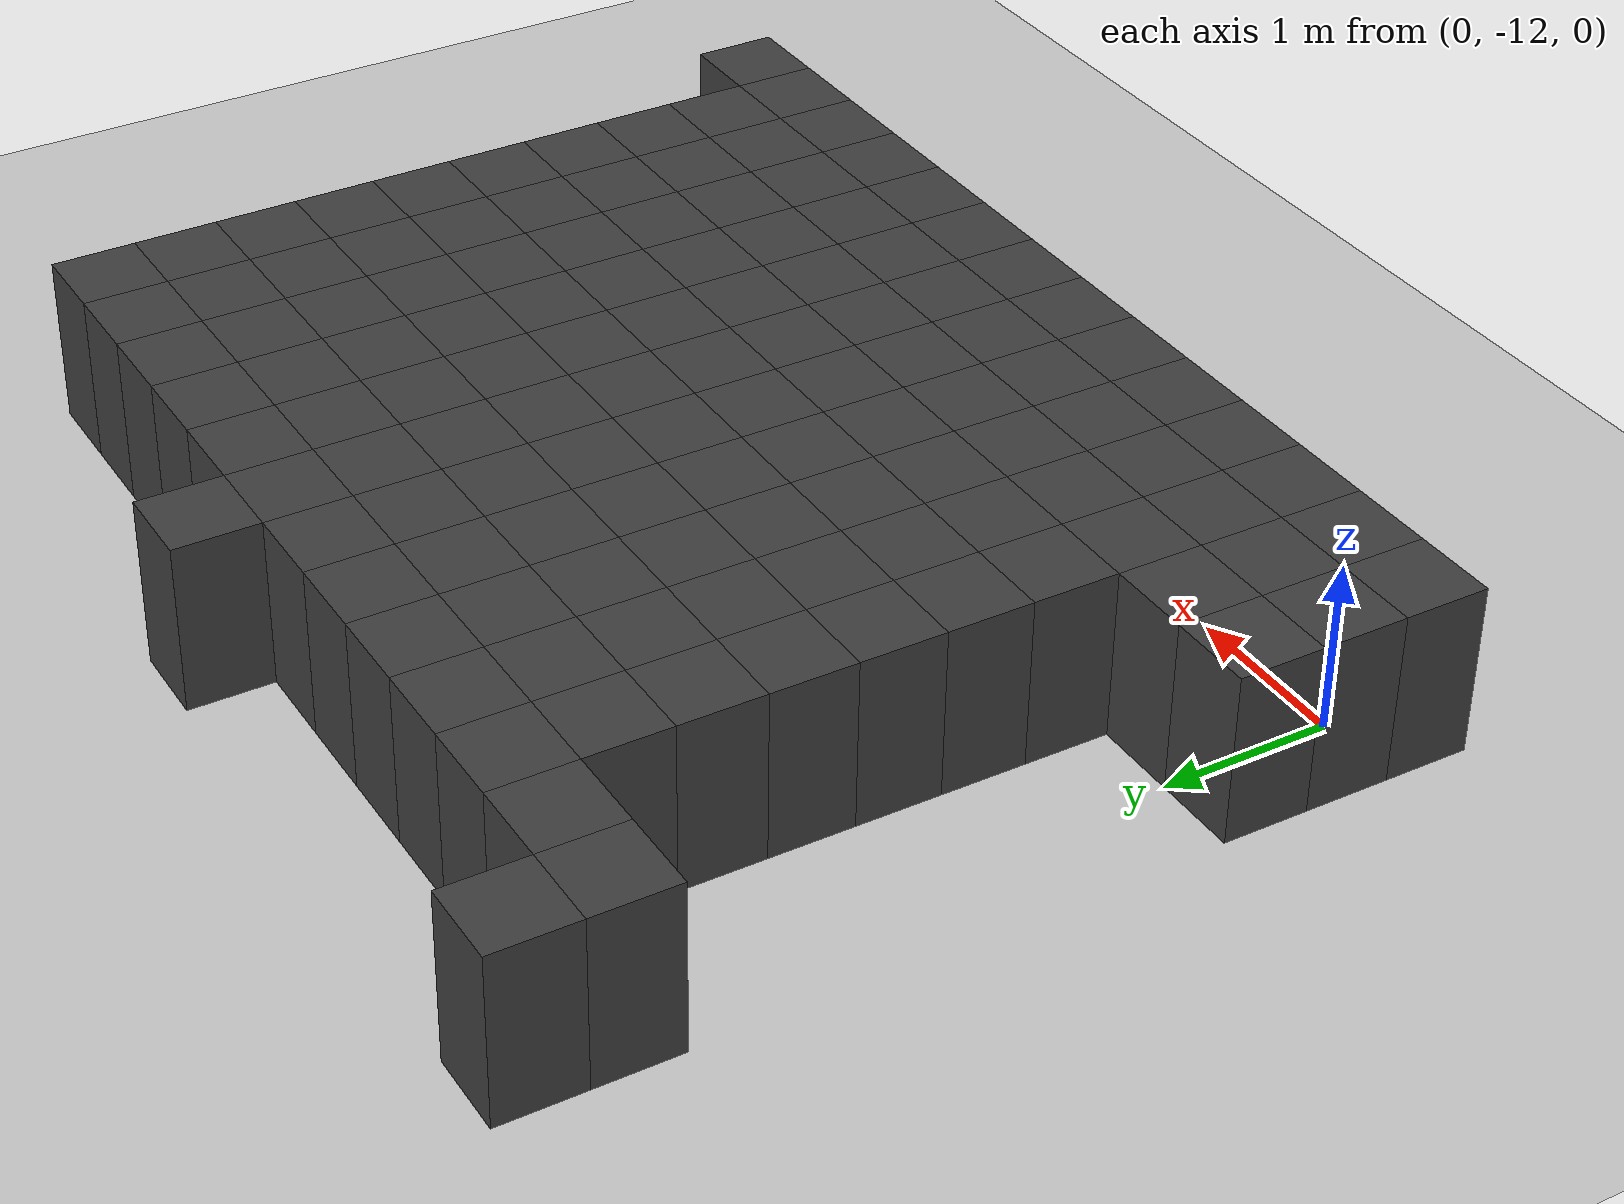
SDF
<sdf version="1.7">
 <world name="map_14888">
  <model name="ground_plane">
   <static>true</static>
   <link name="link">
    <collision name="collision">
     <geometry><plane><normal>0 0 1</normal><size>200 200</size></plane></geometry>
    </collision>
    <visual name="visual">
     <geometry><plane><normal>0 0 1</normal><size>200 200</size></plane></geometry>
     <material><ambient>0.8 0.8 0.8 1</ambient><diffuse>0.8 0.8 0.8 1</diffuse></material>
    </visual>
   </link>
  </model>
  <model name="maze_environment">
   <static>true</static>
   <link name="wall_1417">
    <pose>-0.250 -7.250 0.500 0 0 0</pose>
    <collision name="col"><geometry><box><size>0.5 0.5 1.0</size></box></geometry></collision>
    <visual name="vis">
     <geometry><box><size>0.5 0.5 1.0</size></box></geometry>
     <material><ambient>0.15 0.15 0.15 1</ambient><diffuse>0.25 0.25 0.25 1</diffuse></material>
    </visual>
   </link>
   <link name="wall_1418">
    <pose>3.250 -7.250 0.500 0 0 0</pose>
    <collision name="col"><geometry><box><size>0.5 0.5 1.0</size></box></geometry></collision>
    <visual name="vis">
     <geometry><box><size>0.5 0.5 1.0</size></box></geometry>
     <material><ambient>0.15 0.15 0.15 1</ambient><diffuse>0.25 0.25 0.25 1</diffuse></material>
    </visual>
   </link>
   <link name="wall_1447">
    <pose>-0.250 -7.750 0.500 0 0 0</pose>
    <collision name="col"><geometry><box><size>0.5 0.5 1.0</size></box></geometry></collision>
    <visual name="vis">
     <geometry><box><size>0.5 0.5 1.0</size></box></geometry>
     <material><ambient>0.15 0.15 0.15 1</ambient><diffuse>0.25 0.25 0.25 1</diffuse></material>
    </visual>
   </link>
   <link name="wall_1448">
    <pose>0.250 -7.750 0.500 0 0 0</pose>
    <collision name="col"><geometry><box><size>0.5 0.5 1.0</size></box></geometry></collision>
    <visual name="vis">
     <geometry><box><size>0.5 0.5 1.0</size></box></geometry>
     <material><ambient>0.15 0.15 0.15 1</ambient><diffuse>0.25 0.25 0.25 1</diffuse></material>
    </visual>
   </link>
   <link name="wall_1449">
    <pose>0.750 -7.750 0.500 0 0 0</pose>
    <collision name="col"><geometry><box><size>0.5 0.5 1.0</size></box></geometry></collision>
    <visual name="vis">
     <geometry><box><size>0.5 0.5 1.0</size></box></geometry>
     <material><ambient>0.15 0.15 0.15 1</ambient><diffuse>0.25 0.25 0.25 1</diffuse></material>
    </visual>
   </link>
   <link name="wall_1450">
    <pose>1.250 -7.750 0.500 0 0 0</pose>
    <collision name="col"><geometry><box><size>0.5 0.5 1.0</size></box></geometry></collision>
    <visual name="vis">
     <geometry><box><size>0.5 0.5 1.0</size></box></geometry>
     <material><ambient>0.15 0.15 0.15 1</ambient><diffuse>0.25 0.25 0.25 1</diffuse></material>
    </visual>
   </link>
   <link name="wall_1451">
    <pose>1.750 -7.750 0.500 0 0 0</pose>
    <collision name="col"><geometry><box><size>0.5 0.5 1.0</size></box></geometry></collision>
    <visual name="vis">
     <geometry><box><size>0.5 0.5 1.0</size></box></geometry>
     <material><ambient>0.15 0.15 0.15 1</ambient><diffuse>0.25 0.25 0.25 1</diffuse></material>
    </visual>
   </link>
   <link name="wall_1452">
    <pose>2.250 -7.750 0.500 0 0 0</pose>
    <collision name="col"><geometry><box><size>0.5 0.5 1.0</size></box></geometry></collision>
    <visual name="vis">
     <geometry><box><size>0.5 0.5 1.0</size></box></geometry>
     <material><ambient>0.15 0.15 0.15 1</ambient><diffuse>0.25 0.25 0.25 1</diffuse></material>
    </visual>
   </link>
   <link name="wall_1453">
    <pose>2.750 -7.750 0.500 0 0 0</pose>
    <collision name="col"><geometry><box><size>0.5 0.5 1.0</size></box></geometry></collision>
    <visual name="vis">
     <geometry><box><size>0.5 0.5 1.0</size></box></geometry>
     <material><ambient>0.15 0.15 0.15 1</ambient><diffuse>0.25 0.25 0.25 1</diffuse></material>
    </visual>
   </link>
   <link name="wall_1454">
    <pose>3.250 -7.750 0.500 0 0 0</pose>
    <collision name="col"><geometry><box><size>0.5 0.5 1.0</size></box></geometry></collision>
    <visual name="vis">
     <geometry><box><size>0.5 0.5 1.0</size></box></geometry>
     <material><ambient>0.15 0.15 0.15 1</ambient><diffuse>0.25 0.25 0.25 1</diffuse></material>
    </visual>
   </link>
   <link name="wall_1455">
    <pose>3.750 -7.750 0.500 0 0 0</pose>
    <collision name="col"><geometry><box><size>0.5 0.5 1.0</size></box></geometry></collision>
    <visual name="vis">
     <geometry><box><size>0.5 0.5 1.0</size></box></geometry>
     <material><ambient>0.15 0.15 0.15 1</ambient><diffuse>0.25 0.25 0.25 1</diffuse></material>
    </visual>
   </link>
   <link name="wall_1456">
    <pose>4.250 -7.750 0.500 0 0 0</pose>
    <collision name="col"><geometry><box><size>0.5 0.5 1.0</size></box></geometry></collision>
    <visual name="vis">
     <geometry><box><size>0.5 0.5 1.0</size></box></geometry>
     <material><ambient>0.15 0.15 0.15 1</ambient><diffuse>0.25 0.25 0.25 1</diffuse></material>
    </visual>
   </link>
   <link name="wall_1457">
    <pose>4.750 -7.750 0.500 0 0 0</pose>
    <collision name="col"><geometry><box><size>0.5 0.5 1.0</size></box></geometry></collision>
    <visual name="vis">
     <geometry><box><size>0.5 0.5 1.0</size></box></geometry>
     <material><ambient>0.15 0.15 0.15 1</ambient><diffuse>0.25 0.25 0.25 1</diffuse></material>
    </visual>
   </link>
   <link name="wall_1458">
    <pose>5.250 -7.750 0.500 0 0 0</pose>
    <collision name="col"><geometry><box><size>0.5 0.5 1.0</size></box></geometry></collision>
    <visual name="vis">
     <geometry><box><size>0.5 0.5 1.0</size></box></geometry>
     <material><ambient>0.15 0.15 0.15 1</ambient><diffuse>0.25 0.25 0.25 1</diffuse></material>
    </visual>
   </link>
   <link name="wall_1459">
    <pose>5.750 -7.750 0.500 0 0 0</pose>
    <collision name="col"><geometry><box><size>0.5 0.5 1.0</size></box></geometry></collision>
    <visual name="vis">
     <geometry><box><size>0.5 0.5 1.0</size></box></geometry>
     <material><ambient>0.15 0.15 0.15 1</ambient><diffuse>0.25 0.25 0.25 1</diffuse></material>
    </visual>
   </link>
   <link name="wall_1482">
    <pose>0.750 -8.250 0.500 0 0 0</pose>
    <collision name="col"><geometry><box><size>0.5 0.5 1.0</size></box></geometry></collision>
    <visual name="vis">
     <geometry><box><size>0.5 0.5 1.0</size></box></geometry>
     <material><ambient>0.15 0.15 0.15 1</ambient><diffuse>0.25 0.25 0.25 1</diffuse></material>
    </visual>
   </link>
   <link name="wall_1483">
    <pose>1.250 -8.250 0.500 0 0 0</pose>
    <collision name="col"><geometry><box><size>0.5 0.5 1.0</size></box></geometry></collision>
    <visual name="vis">
     <geometry><box><size>0.5 0.5 1.0</size></box></geometry>
     <material><ambient>0.15 0.15 0.15 1</ambient><diffuse>0.25 0.25 0.25 1</diffuse></material>
    </visual>
   </link>
   <link name="wall_1484">
    <pose>1.750 -8.250 0.500 0 0 0</pose>
    <collision name="col"><geometry><box><size>0.5 0.5 1.0</size></box></geometry></collision>
    <visual name="vis">
     <geometry><box><size>0.5 0.5 1.0</size></box></geometry>
     <material><ambient>0.15 0.15 0.15 1</ambient><diffuse>0.25 0.25 0.25 1</diffuse></material>
    </visual>
   </link>
   <link name="wall_1485">
    <pose>2.250 -8.250 0.500 0 0 0</pose>
    <collision name="col"><geometry><box><size>0.5 0.5 1.0</size></box></geometry></collision>
    <visual name="vis">
     <geometry><box><size>0.5 0.5 1.0</size></box></geometry>
     <material><ambient>0.15 0.15 0.15 1</ambient><diffuse>0.25 0.25 0.25 1</diffuse></material>
    </visual>
   </link>
   <link name="wall_1486">
    <pose>2.750 -8.250 0.500 0 0 0</pose>
    <collision name="col"><geometry><box><size>0.5 0.5 1.0</size></box></geometry></collision>
    <visual name="vis">
     <geometry><box><size>0.5 0.5 1.0</size></box></geometry>
     <material><ambient>0.15 0.15 0.15 1</ambient><diffuse>0.25 0.25 0.25 1</diffuse></material>
    </visual>
   </link>
   <link name="wall_1487">
    <pose>3.250 -8.250 0.500 0 0 0</pose>
    <collision name="col"><geometry><box><size>0.5 0.5 1.0</size></box></geometry></collision>
    <visual name="vis">
     <geometry><box><size>0.5 0.5 1.0</size></box></geometry>
     <material><ambient>0.15 0.15 0.15 1</ambient><diffuse>0.25 0.25 0.25 1</diffuse></material>
    </visual>
   </link>
   <link name="wall_1488">
    <pose>3.750 -8.250 0.500 0 0 0</pose>
    <collision name="col"><geometry><box><size>0.5 0.5 1.0</size></box></geometry></collision>
    <visual name="vis">
     <geometry><box><size>0.5 0.5 1.0</size></box></geometry>
     <material><ambient>0.15 0.15 0.15 1</ambient><diffuse>0.25 0.25 0.25 1</diffuse></material>
    </visual>
   </link>
   <link name="wall_1489">
    <pose>4.250 -8.250 0.500 0 0 0</pose>
    <collision name="col"><geometry><box><size>0.5 0.5 1.0</size></box></geometry></collision>
    <visual name="vis">
     <geometry><box><size>0.5 0.5 1.0</size></box></geometry>
     <material><ambient>0.15 0.15 0.15 1</ambient><diffuse>0.25 0.25 0.25 1</diffuse></material>
    </visual>
   </link>
   <link name="wall_1490">
    <pose>4.750 -8.250 0.500 0 0 0</pose>
    <collision name="col"><geometry><box><size>0.5 0.5 1.0</size></box></geometry></collision>
    <visual name="vis">
     <geometry><box><size>0.5 0.5 1.0</size></box></geometry>
     <material><ambient>0.15 0.15 0.15 1</ambient><diffuse>0.25 0.25 0.25 1</diffuse></material>
    </visual>
   </link>
   <link name="wall_1491">
    <pose>5.250 -8.250 0.500 0 0 0</pose>
    <collision name="col"><geometry><box><size>0.5 0.5 1.0</size></box></geometry></collision>
    <visual name="vis">
     <geometry><box><size>0.5 0.5 1.0</size></box></geometry>
     <material><ambient>0.15 0.15 0.15 1</ambient><diffuse>0.25 0.25 0.25 1</diffuse></material>
    </visual>
   </link>
   <link name="wall_1492">
    <pose>5.750 -8.250 0.500 0 0 0</pose>
    <collision name="col"><geometry><box><size>0.5 0.5 1.0</size></box></geometry></collision>
    <visual name="vis">
     <geometry><box><size>0.5 0.5 1.0</size></box></geometry>
     <material><ambient>0.15 0.15 0.15 1</ambient><diffuse>0.25 0.25 0.25 1</diffuse></material>
    </visual>
   </link>
   <link name="wall_1515">
    <pose>0.750 -8.750 0.500 0 0 0</pose>
    <collision name="col"><geometry><box><size>0.5 0.5 1.0</size></box></geometry></collision>
    <visual name="vis">
     <geometry><box><size>0.5 0.5 1.0</size></box></geometry>
     <material><ambient>0.15 0.15 0.15 1</ambient><diffuse>0.25 0.25 0.25 1</diffuse></material>
    </visual>
   </link>
   <link name="wall_1516">
    <pose>1.250 -8.750 0.500 0 0 0</pose>
    <collision name="col"><geometry><box><size>0.5 0.5 1.0</size></box></geometry></collision>
    <visual name="vis">
     <geometry><box><size>0.5 0.5 1.0</size></box></geometry>
     <material><ambient>0.15 0.15 0.15 1</ambient><diffuse>0.25 0.25 0.25 1</diffuse></material>
    </visual>
   </link>
   <link name="wall_1517">
    <pose>1.750 -8.750 0.500 0 0 0</pose>
    <collision name="col"><geometry><box><size>0.5 0.5 1.0</size></box></geometry></collision>
    <visual name="vis">
     <geometry><box><size>0.5 0.5 1.0</size></box></geometry>
     <material><ambient>0.15 0.15 0.15 1</ambient><diffuse>0.25 0.25 0.25 1</diffuse></material>
    </visual>
   </link>
   <link name="wall_1518">
    <pose>2.250 -8.750 0.500 0 0 0</pose>
    <collision name="col"><geometry><box><size>0.5 0.5 1.0</size></box></geometry></collision>
    <visual name="vis">
     <geometry><box><size>0.5 0.5 1.0</size></box></geometry>
     <material><ambient>0.15 0.15 0.15 1</ambient><diffuse>0.25 0.25 0.25 1</diffuse></material>
    </visual>
   </link>
   <link name="wall_1519">
    <pose>2.750 -8.750 0.500 0 0 0</pose>
    <collision name="col"><geometry><box><size>0.5 0.5 1.0</size></box></geometry></collision>
    <visual name="vis">
     <geometry><box><size>0.5 0.5 1.0</size></box></geometry>
     <material><ambient>0.15 0.15 0.15 1</ambient><diffuse>0.25 0.25 0.25 1</diffuse></material>
    </visual>
   </link>
   <link name="wall_1520">
    <pose>3.250 -8.750 0.500 0 0 0</pose>
    <collision name="col"><geometry><box><size>0.5 0.5 1.0</size></box></geometry></collision>
    <visual name="vis">
     <geometry><box><size>0.5 0.5 1.0</size></box></geometry>
     <material><ambient>0.15 0.15 0.15 1</ambient><diffuse>0.25 0.25 0.25 1</diffuse></material>
    </visual>
   </link>
   <link name="wall_1521">
    <pose>3.750 -8.750 0.500 0 0 0</pose>
    <collision name="col"><geometry><box><size>0.5 0.5 1.0</size></box></geometry></collision>
    <visual name="vis">
     <geometry><box><size>0.5 0.5 1.0</size></box></geometry>
     <material><ambient>0.15 0.15 0.15 1</ambient><diffuse>0.25 0.25 0.25 1</diffuse></material>
    </visual>
   </link>
   <link name="wall_1522">
    <pose>4.250 -8.750 0.500 0 0 0</pose>
    <collision name="col"><geometry><box><size>0.5 0.5 1.0</size></box></geometry></collision>
    <visual name="vis">
     <geometry><box><size>0.5 0.5 1.0</size></box></geometry>
     <material><ambient>0.15 0.15 0.15 1</ambient><diffuse>0.25 0.25 0.25 1</diffuse></material>
    </visual>
   </link>
   <link name="wall_1523">
    <pose>4.750 -8.750 0.500 0 0 0</pose>
    <collision name="col"><geometry><box><size>0.5 0.5 1.0</size></box></geometry></collision>
    <visual name="vis">
     <geometry><box><size>0.5 0.5 1.0</size></box></geometry>
     <material><ambient>0.15 0.15 0.15 1</ambient><diffuse>0.25 0.25 0.25 1</diffuse></material>
    </visual>
   </link>
   <link name="wall_1524">
    <pose>5.250 -8.750 0.500 0 0 0</pose>
    <collision name="col"><geometry><box><size>0.5 0.5 1.0</size></box></geometry></collision>
    <visual name="vis">
     <geometry><box><size>0.5 0.5 1.0</size></box></geometry>
     <material><ambient>0.15 0.15 0.15 1</ambient><diffuse>0.25 0.25 0.25 1</diffuse></material>
    </visual>
   </link>
   <link name="wall_1525">
    <pose>5.750 -8.750 0.500 0 0 0</pose>
    <collision name="col"><geometry><box><size>0.5 0.5 1.0</size></box></geometry></collision>
    <visual name="vis">
     <geometry><box><size>0.5 0.5 1.0</size></box></geometry>
     <material><ambient>0.15 0.15 0.15 1</ambient><diffuse>0.25 0.25 0.25 1</diffuse></material>
    </visual>
   </link>
   <link name="wall_1547">
    <pose>0.750 -9.250 0.500 0 0 0</pose>
    <collision name="col"><geometry><box><size>0.5 0.5 1.0</size></box></geometry></collision>
    <visual name="vis">
     <geometry><box><size>0.5 0.5 1.0</size></box></geometry>
     <material><ambient>0.15 0.15 0.15 1</ambient><diffuse>0.25 0.25 0.25 1</diffuse></material>
    </visual>
   </link>
   <link name="wall_1548">
    <pose>1.250 -9.250 0.500 0 0 0</pose>
    <collision name="col"><geometry><box><size>0.5 0.5 1.0</size></box></geometry></collision>
    <visual name="vis">
     <geometry><box><size>0.5 0.5 1.0</size></box></geometry>
     <material><ambient>0.15 0.15 0.15 1</ambient><diffuse>0.25 0.25 0.25 1</diffuse></material>
    </visual>
   </link>
   <link name="wall_1549">
    <pose>1.750 -9.250 0.500 0 0 0</pose>
    <collision name="col"><geometry><box><size>0.5 0.5 1.0</size></box></geometry></collision>
    <visual name="vis">
     <geometry><box><size>0.5 0.5 1.0</size></box></geometry>
     <material><ambient>0.15 0.15 0.15 1</ambient><diffuse>0.25 0.25 0.25 1</diffuse></material>
    </visual>
   </link>
   <link name="wall_1550">
    <pose>2.250 -9.250 0.500 0 0 0</pose>
    <collision name="col"><geometry><box><size>0.5 0.5 1.0</size></box></geometry></collision>
    <visual name="vis">
     <geometry><box><size>0.5 0.5 1.0</size></box></geometry>
     <material><ambient>0.15 0.15 0.15 1</ambient><diffuse>0.25 0.25 0.25 1</diffuse></material>
    </visual>
   </link>
   <link name="wall_1551">
    <pose>2.750 -9.250 0.500 0 0 0</pose>
    <collision name="col"><geometry><box><size>0.5 0.5 1.0</size></box></geometry></collision>
    <visual name="vis">
     <geometry><box><size>0.5 0.5 1.0</size></box></geometry>
     <material><ambient>0.15 0.15 0.15 1</ambient><diffuse>0.25 0.25 0.25 1</diffuse></material>
    </visual>
   </link>
   <link name="wall_1552">
    <pose>3.250 -9.250 0.500 0 0 0</pose>
    <collision name="col"><geometry><box><size>0.5 0.5 1.0</size></box></geometry></collision>
    <visual name="vis">
     <geometry><box><size>0.5 0.5 1.0</size></box></geometry>
     <material><ambient>0.15 0.15 0.15 1</ambient><diffuse>0.25 0.25 0.25 1</diffuse></material>
    </visual>
   </link>
   <link name="wall_1553">
    <pose>3.750 -9.250 0.500 0 0 0</pose>
    <collision name="col"><geometry><box><size>0.5 0.5 1.0</size></box></geometry></collision>
    <visual name="vis">
     <geometry><box><size>0.5 0.5 1.0</size></box></geometry>
     <material><ambient>0.15 0.15 0.15 1</ambient><diffuse>0.25 0.25 0.25 1</diffuse></material>
    </visual>
   </link>
   <link name="wall_1554">
    <pose>4.250 -9.250 0.500 0 0 0</pose>
    <collision name="col"><geometry><box><size>0.5 0.5 1.0</size></box></geometry></collision>
    <visual name="vis">
     <geometry><box><size>0.5 0.5 1.0</size></box></geometry>
     <material><ambient>0.15 0.15 0.15 1</ambient><diffuse>0.25 0.25 0.25 1</diffuse></material>
    </visual>
   </link>
   <link name="wall_1555">
    <pose>4.750 -9.250 0.500 0 0 0</pose>
    <collision name="col"><geometry><box><size>0.5 0.5 1.0</size></box></geometry></collision>
    <visual name="vis">
     <geometry><box><size>0.5 0.5 1.0</size></box></geometry>
     <material><ambient>0.15 0.15 0.15 1</ambient><diffuse>0.25 0.25 0.25 1</diffuse></material>
    </visual>
   </link>
   <link name="wall_1556">
    <pose>5.250 -9.250 0.500 0 0 0</pose>
    <collision name="col"><geometry><box><size>0.5 0.5 1.0</size></box></geometry></collision>
    <visual name="vis">
     <geometry><box><size>0.5 0.5 1.0</size></box></geometry>
     <material><ambient>0.15 0.15 0.15 1</ambient><diffuse>0.25 0.25 0.25 1</diffuse></material>
    </visual>
   </link>
   <link name="wall_1557">
    <pose>5.750 -9.250 0.500 0 0 0</pose>
    <collision name="col"><geometry><box><size>0.5 0.5 1.0</size></box></geometry></collision>
    <visual name="vis">
     <geometry><box><size>0.5 0.5 1.0</size></box></geometry>
     <material><ambient>0.15 0.15 0.15 1</ambient><diffuse>0.25 0.25 0.25 1</diffuse></material>
    </visual>
   </link>
   <link name="wall_1587">
    <pose>0.750 -9.750 0.500 0 0 0</pose>
    <collision name="col"><geometry><box><size>0.5 0.5 1.0</size></box></geometry></collision>
    <visual name="vis">
     <geometry><box><size>0.5 0.5 1.0</size></box></geometry>
     <material><ambient>0.15 0.15 0.15 1</ambient><diffuse>0.25 0.25 0.25 1</diffuse></material>
    </visual>
   </link>
   <link name="wall_1588">
    <pose>1.250 -9.750 0.500 0 0 0</pose>
    <collision name="col"><geometry><box><size>0.5 0.5 1.0</size></box></geometry></collision>
    <visual name="vis">
     <geometry><box><size>0.5 0.5 1.0</size></box></geometry>
     <material><ambient>0.15 0.15 0.15 1</ambient><diffuse>0.25 0.25 0.25 1</diffuse></material>
    </visual>
   </link>
   <link name="wall_1589">
    <pose>1.750 -9.750 0.500 0 0 0</pose>
    <collision name="col"><geometry><box><size>0.5 0.5 1.0</size></box></geometry></collision>
    <visual name="vis">
     <geometry><box><size>0.5 0.5 1.0</size></box></geometry>
     <material><ambient>0.15 0.15 0.15 1</ambient><diffuse>0.25 0.25 0.25 1</diffuse></material>
    </visual>
   </link>
   <link name="wall_1590">
    <pose>2.250 -9.750 0.500 0 0 0</pose>
    <collision name="col"><geometry><box><size>0.5 0.5 1.0</size></box></geometry></collision>
    <visual name="vis">
     <geometry><box><size>0.5 0.5 1.0</size></box></geometry>
     <material><ambient>0.15 0.15 0.15 1</ambient><diffuse>0.25 0.25 0.25 1</diffuse></material>
    </visual>
   </link>
   <link name="wall_1591">
    <pose>2.750 -9.750 0.500 0 0 0</pose>
    <collision name="col"><geometry><box><size>0.5 0.5 1.0</size></box></geometry></collision>
    <visual name="vis">
     <geometry><box><size>0.5 0.5 1.0</size></box></geometry>
     <material><ambient>0.15 0.15 0.15 1</ambient><diffuse>0.25 0.25 0.25 1</diffuse></material>
    </visual>
   </link>
   <link name="wall_1592">
    <pose>3.250 -9.750 0.500 0 0 0</pose>
    <collision name="col"><geometry><box><size>0.5 0.5 1.0</size></box></geometry></collision>
    <visual name="vis">
     <geometry><box><size>0.5 0.5 1.0</size></box></geometry>
     <material><ambient>0.15 0.15 0.15 1</ambient><diffuse>0.25 0.25 0.25 1</diffuse></material>
    </visual>
   </link>
   <link name="wall_1593">
    <pose>3.750 -9.750 0.500 0 0 0</pose>
    <collision name="col"><geometry><box><size>0.5 0.5 1.0</size></box></geometry></collision>
    <visual name="vis">
     <geometry><box><size>0.5 0.5 1.0</size></box></geometry>
     <material><ambient>0.15 0.15 0.15 1</ambient><diffuse>0.25 0.25 0.25 1</diffuse></material>
    </visual>
   </link>
   <link name="wall_1594">
    <pose>4.250 -9.750 0.500 0 0 0</pose>
    <collision name="col"><geometry><box><size>0.5 0.5 1.0</size></box></geometry></collision>
    <visual name="vis">
     <geometry><box><size>0.5 0.5 1.0</size></box></geometry>
     <material><ambient>0.15 0.15 0.15 1</ambient><diffuse>0.25 0.25 0.25 1</diffuse></material>
    </visual>
   </link>
   <link name="wall_1595">
    <pose>4.750 -9.750 0.500 0 0 0</pose>
    <collision name="col"><geometry><box><size>0.5 0.5 1.0</size></box></geometry></collision>
    <visual name="vis">
     <geometry><box><size>0.5 0.5 1.0</size></box></geometry>
     <material><ambient>0.15 0.15 0.15 1</ambient><diffuse>0.25 0.25 0.25 1</diffuse></material>
    </visual>
   </link>
   <link name="wall_1596">
    <pose>5.250 -9.750 0.500 0 0 0</pose>
    <collision name="col"><geometry><box><size>0.5 0.5 1.0</size></box></geometry></collision>
    <visual name="vis">
     <geometry><box><size>0.5 0.5 1.0</size></box></geometry>
     <material><ambient>0.15 0.15 0.15 1</ambient><diffuse>0.25 0.25 0.25 1</diffuse></material>
    </visual>
   </link>
   <link name="wall_1597">
    <pose>5.750 -9.750 0.500 0 0 0</pose>
    <collision name="col"><geometry><box><size>0.5 0.5 1.0</size></box></geometry></collision>
    <visual name="vis">
     <geometry><box><size>0.5 0.5 1.0</size></box></geometry>
     <material><ambient>0.15 0.15 0.15 1</ambient><diffuse>0.25 0.25 0.25 1</diffuse></material>
    </visual>
   </link>
   <link name="wall_1627">
    <pose>0.750 -10.250 0.500 0 0 0</pose>
    <collision name="col"><geometry><box><size>0.5 0.5 1.0</size></box></geometry></collision>
    <visual name="vis">
     <geometry><box><size>0.5 0.5 1.0</size></box></geometry>
     <material><ambient>0.15 0.15 0.15 1</ambient><diffuse>0.25 0.25 0.25 1</diffuse></material>
    </visual>
   </link>
   <link name="wall_1628">
    <pose>1.250 -10.250 0.500 0 0 0</pose>
    <collision name="col"><geometry><box><size>0.5 0.5 1.0</size></box></geometry></collision>
    <visual name="vis">
     <geometry><box><size>0.5 0.5 1.0</size></box></geometry>
     <material><ambient>0.15 0.15 0.15 1</ambient><diffuse>0.25 0.25 0.25 1</diffuse></material>
    </visual>
   </link>
   <link name="wall_1629">
    <pose>1.750 -10.250 0.500 0 0 0</pose>
    <collision name="col"><geometry><box><size>0.5 0.5 1.0</size></box></geometry></collision>
    <visual name="vis">
     <geometry><box><size>0.5 0.5 1.0</size></box></geometry>
     <material><ambient>0.15 0.15 0.15 1</ambient><diffuse>0.25 0.25 0.25 1</diffuse></material>
    </visual>
   </link>
   <link name="wall_1630">
    <pose>2.250 -10.250 0.500 0 0 0</pose>
    <collision name="col"><geometry><box><size>0.5 0.5 1.0</size></box></geometry></collision>
    <visual name="vis">
     <geometry><box><size>0.5 0.5 1.0</size></box></geometry>
     <material><ambient>0.15 0.15 0.15 1</ambient><diffuse>0.25 0.25 0.25 1</diffuse></material>
    </visual>
   </link>
   <link name="wall_1631">
    <pose>2.750 -10.250 0.500 0 0 0</pose>
    <collision name="col"><geometry><box><size>0.5 0.5 1.0</size></box></geometry></collision>
    <visual name="vis">
     <geometry><box><size>0.5 0.5 1.0</size></box></geometry>
     <material><ambient>0.15 0.15 0.15 1</ambient><diffuse>0.25 0.25 0.25 1</diffuse></material>
    </visual>
   </link>
   <link name="wall_1632">
    <pose>3.250 -10.250 0.500 0 0 0</pose>
    <collision name="col"><geometry><box><size>0.5 0.5 1.0</size></box></geometry></collision>
    <visual name="vis">
     <geometry><box><size>0.5 0.5 1.0</size></box></geometry>
     <material><ambient>0.15 0.15 0.15 1</ambient><diffuse>0.25 0.25 0.25 1</diffuse></material>
    </visual>
   </link>
   <link name="wall_1633">
    <pose>3.750 -10.250 0.500 0 0 0</pose>
    <collision name="col"><geometry><box><size>0.5 0.5 1.0</size></box></geometry></collision>
    <visual name="vis">
     <geometry><box><size>0.5 0.5 1.0</size></box></geometry>
     <material><ambient>0.15 0.15 0.15 1</ambient><diffuse>0.25 0.25 0.25 1</diffuse></material>
    </visual>
   </link>
   <link name="wall_1634">
    <pose>4.250 -10.250 0.500 0 0 0</pose>
    <collision name="col"><geometry><box><size>0.5 0.5 1.0</size></box></geometry></collision>
    <visual name="vis">
     <geometry><box><size>0.5 0.5 1.0</size></box></geometry>
     <material><ambient>0.15 0.15 0.15 1</ambient><diffuse>0.25 0.25 0.25 1</diffuse></material>
    </visual>
   </link>
   <link name="wall_1635">
    <pose>4.750 -10.250 0.500 0 0 0</pose>
    <collision name="col"><geometry><box><size>0.5 0.5 1.0</size></box></geometry></collision>
    <visual name="vis">
     <geometry><box><size>0.5 0.5 1.0</size></box></geometry>
     <material><ambient>0.15 0.15 0.15 1</ambient><diffuse>0.25 0.25 0.25 1</diffuse></material>
    </visual>
   </link>
   <link name="wall_1636">
    <pose>5.250 -10.250 0.500 0 0 0</pose>
    <collision name="col"><geometry><box><size>0.5 0.5 1.0</size></box></geometry></collision>
    <visual name="vis">
     <geometry><box><size>0.5 0.5 1.0</size></box></geometry>
     <material><ambient>0.15 0.15 0.15 1</ambient><diffuse>0.25 0.25 0.25 1</diffuse></material>
    </visual>
   </link>
   <link name="wall_1637">
    <pose>5.750 -10.250 0.500 0 0 0</pose>
    <collision name="col"><geometry><box><size>0.5 0.5 1.0</size></box></geometry></collision>
    <visual name="vis">
     <geometry><box><size>0.5 0.5 1.0</size></box></geometry>
     <material><ambient>0.15 0.15 0.15 1</ambient><diffuse>0.25 0.25 0.25 1</diffuse></material>
    </visual>
   </link>
   <link name="wall_1667">
    <pose>0.750 -10.750 0.500 0 0 0</pose>
    <collision name="col"><geometry><box><size>0.5 0.5 1.0</size></box></geometry></collision>
    <visual name="vis">
     <geometry><box><size>0.5 0.5 1.0</size></box></geometry>
     <material><ambient>0.15 0.15 0.15 1</ambient><diffuse>0.25 0.25 0.25 1</diffuse></material>
    </visual>
   </link>
   <link name="wall_1668">
    <pose>1.250 -10.750 0.500 0 0 0</pose>
    <collision name="col"><geometry><box><size>0.5 0.5 1.0</size></box></geometry></collision>
    <visual name="vis">
     <geometry><box><size>0.5 0.5 1.0</size></box></geometry>
     <material><ambient>0.15 0.15 0.15 1</ambient><diffuse>0.25 0.25 0.25 1</diffuse></material>
    </visual>
   </link>
   <link name="wall_1669">
    <pose>1.750 -10.750 0.500 0 0 0</pose>
    <collision name="col"><geometry><box><size>0.5 0.5 1.0</size></box></geometry></collision>
    <visual name="vis">
     <geometry><box><size>0.5 0.5 1.0</size></box></geometry>
     <material><ambient>0.15 0.15 0.15 1</ambient><diffuse>0.25 0.25 0.25 1</diffuse></material>
    </visual>
   </link>
   <link name="wall_1670">
    <pose>2.250 -10.750 0.500 0 0 0</pose>
    <collision name="col"><geometry><box><size>0.5 0.5 1.0</size></box></geometry></collision>
    <visual name="vis">
     <geometry><box><size>0.5 0.5 1.0</size></box></geometry>
     <material><ambient>0.15 0.15 0.15 1</ambient><diffuse>0.25 0.25 0.25 1</diffuse></material>
    </visual>
   </link>
   <link name="wall_1671">
    <pose>2.750 -10.750 0.500 0 0 0</pose>
    <collision name="col"><geometry><box><size>0.5 0.5 1.0</size></box></geometry></collision>
    <visual name="vis">
     <geometry><box><size>0.5 0.5 1.0</size></box></geometry>
     <material><ambient>0.15 0.15 0.15 1</ambient><diffuse>0.25 0.25 0.25 1</diffuse></material>
    </visual>
   </link>
   <link name="wall_1672">
    <pose>3.250 -10.750 0.500 0 0 0</pose>
    <collision name="col"><geometry><box><size>0.5 0.5 1.0</size></box></geometry></collision>
    <visual name="vis">
     <geometry><box><size>0.5 0.5 1.0</size></box></geometry>
     <material><ambient>0.15 0.15 0.15 1</ambient><diffuse>0.25 0.25 0.25 1</diffuse></material>
    </visual>
   </link>
   <link name="wall_1673">
    <pose>3.750 -10.750 0.500 0 0 0</pose>
    <collision name="col"><geometry><box><size>0.5 0.5 1.0</size></box></geometry></collision>
    <visual name="vis">
     <geometry><box><size>0.5 0.5 1.0</size></box></geometry>
     <material><ambient>0.15 0.15 0.15 1</ambient><diffuse>0.25 0.25 0.25 1</diffuse></material>
    </visual>
   </link>
   <link name="wall_1674">
    <pose>4.250 -10.750 0.500 0 0 0</pose>
    <collision name="col"><geometry><box><size>0.5 0.5 1.0</size></box></geometry></collision>
    <visual name="vis">
     <geometry><box><size>0.5 0.5 1.0</size></box></geometry>
     <material><ambient>0.15 0.15 0.15 1</ambient><diffuse>0.25 0.25 0.25 1</diffuse></material>
    </visual>
   </link>
   <link name="wall_1675">
    <pose>4.750 -10.750 0.500 0 0 0</pose>
    <collision name="col"><geometry><box><size>0.5 0.5 1.0</size></box></geometry></collision>
    <visual name="vis">
     <geometry><box><size>0.5 0.5 1.0</size></box></geometry>
     <material><ambient>0.15 0.15 0.15 1</ambient><diffuse>0.25 0.25 0.25 1</diffuse></material>
    </visual>
   </link>
   <link name="wall_1676">
    <pose>5.250 -10.750 0.500 0 0 0</pose>
    <collision name="col"><geometry><box><size>0.5 0.5 1.0</size></box></geometry></collision>
    <visual name="vis">
     <geometry><box><size>0.5 0.5 1.0</size></box></geometry>
     <material><ambient>0.15 0.15 0.15 1</ambient><diffuse>0.25 0.25 0.25 1</diffuse></material>
    </visual>
   </link>
   <link name="wall_1677">
    <pose>5.750 -10.750 0.500 0 0 0</pose>
    <collision name="col"><geometry><box><size>0.5 0.5 1.0</size></box></geometry></collision>
    <visual name="vis">
     <geometry><box><size>0.5 0.5 1.0</size></box></geometry>
     <material><ambient>0.15 0.15 0.15 1</ambient><diffuse>0.25 0.25 0.25 1</diffuse></material>
    </visual>
   </link>
   <link name="wall_1711">
    <pose>-0.250 -11.250 0.500 0 0 0</pose>
    <collision name="col"><geometry><box><size>0.5 0.5 1.0</size></box></geometry></collision>
    <visual name="vis">
     <geometry><box><size>0.5 0.5 1.0</size></box></geometry>
     <material><ambient>0.15 0.15 0.15 1</ambient><diffuse>0.25 0.25 0.25 1</diffuse></material>
    </visual>
   </link>
   <link name="wall_1712">
    <pose>0.250 -11.250 0.500 0 0 0</pose>
    <collision name="col"><geometry><box><size>0.5 0.5 1.0</size></box></geometry></collision>
    <visual name="vis">
     <geometry><box><size>0.5 0.5 1.0</size></box></geometry>
     <material><ambient>0.15 0.15 0.15 1</ambient><diffuse>0.25 0.25 0.25 1</diffuse></material>
    </visual>
   </link>
   <link name="wall_1713">
    <pose>0.750 -11.250 0.500 0 0 0</pose>
    <collision name="col"><geometry><box><size>0.5 0.5 1.0</size></box></geometry></collision>
    <visual name="vis">
     <geometry><box><size>0.5 0.5 1.0</size></box></geometry>
     <material><ambient>0.15 0.15 0.15 1</ambient><diffuse>0.25 0.25 0.25 1</diffuse></material>
    </visual>
   </link>
   <link name="wall_1714">
    <pose>1.250 -11.250 0.500 0 0 0</pose>
    <collision name="col"><geometry><box><size>0.5 0.5 1.0</size></box></geometry></collision>
    <visual name="vis">
     <geometry><box><size>0.5 0.5 1.0</size></box></geometry>
     <material><ambient>0.15 0.15 0.15 1</ambient><diffuse>0.25 0.25 0.25 1</diffuse></material>
    </visual>
   </link>
   <link name="wall_1715">
    <pose>1.750 -11.250 0.500 0 0 0</pose>
    <collision name="col"><geometry><box><size>0.5 0.5 1.0</size></box></geometry></collision>
    <visual name="vis">
     <geometry><box><size>0.5 0.5 1.0</size></box></geometry>
     <material><ambient>0.15 0.15 0.15 1</ambient><diffuse>0.25 0.25 0.25 1</diffuse></material>
    </visual>
   </link>
   <link name="wall_1716">
    <pose>2.250 -11.250 0.500 0 0 0</pose>
    <collision name="col"><geometry><box><size>0.5 0.5 1.0</size></box></geometry></collision>
    <visual name="vis">
     <geometry><box><size>0.5 0.5 1.0</size></box></geometry>
     <material><ambient>0.15 0.15 0.15 1</ambient><diffuse>0.25 0.25 0.25 1</diffuse></material>
    </visual>
   </link>
   <link name="wall_1717">
    <pose>2.750 -11.250 0.500 0 0 0</pose>
    <collision name="col"><geometry><box><size>0.5 0.5 1.0</size></box></geometry></collision>
    <visual name="vis">
     <geometry><box><size>0.5 0.5 1.0</size></box></geometry>
     <material><ambient>0.15 0.15 0.15 1</ambient><diffuse>0.25 0.25 0.25 1</diffuse></material>
    </visual>
   </link>
   <link name="wall_1718">
    <pose>3.250 -11.250 0.500 0 0 0</pose>
    <collision name="col"><geometry><box><size>0.5 0.5 1.0</size></box></geometry></collision>
    <visual name="vis">
     <geometry><box><size>0.5 0.5 1.0</size></box></geometry>
     <material><ambient>0.15 0.15 0.15 1</ambient><diffuse>0.25 0.25 0.25 1</diffuse></material>
    </visual>
   </link>
   <link name="wall_1719">
    <pose>3.750 -11.250 0.500 0 0 0</pose>
    <collision name="col"><geometry><box><size>0.5 0.5 1.0</size></box></geometry></collision>
    <visual name="vis">
     <geometry><box><size>0.5 0.5 1.0</size></box></geometry>
     <material><ambient>0.15 0.15 0.15 1</ambient><diffuse>0.25 0.25 0.25 1</diffuse></material>
    </visual>
   </link>
   <link name="wall_1720">
    <pose>4.250 -11.250 0.500 0 0 0</pose>
    <collision name="col"><geometry><box><size>0.5 0.5 1.0</size></box></geometry></collision>
    <visual name="vis">
     <geometry><box><size>0.5 0.5 1.0</size></box></geometry>
     <material><ambient>0.15 0.15 0.15 1</ambient><diffuse>0.25 0.25 0.25 1</diffuse></material>
    </visual>
   </link>
   <link name="wall_1721">
    <pose>4.750 -11.250 0.500 0 0 0</pose>
    <collision name="col"><geometry><box><size>0.5 0.5 1.0</size></box></geometry></collision>
    <visual name="vis">
     <geometry><box><size>0.5 0.5 1.0</size></box></geometry>
     <material><ambient>0.15 0.15 0.15 1</ambient><diffuse>0.25 0.25 0.25 1</diffuse></material>
    </visual>
   </link>
   <link name="wall_1722">
    <pose>5.250 -11.250 0.500 0 0 0</pose>
    <collision name="col"><geometry><box><size>0.5 0.5 1.0</size></box></geometry></collision>
    <visual name="vis">
     <geometry><box><size>0.5 0.5 1.0</size></box></geometry>
     <material><ambient>0.15 0.15 0.15 1</ambient><diffuse>0.25 0.25 0.25 1</diffuse></material>
    </visual>
   </link>
   <link name="wall_1723">
    <pose>5.750 -11.250 0.500 0 0 0</pose>
    <collision name="col"><geometry><box><size>0.5 0.5 1.0</size></box></geometry></collision>
    <visual name="vis">
     <geometry><box><size>0.5 0.5 1.0</size></box></geometry>
     <material><ambient>0.15 0.15 0.15 1</ambient><diffuse>0.25 0.25 0.25 1</diffuse></material>
    </visual>
   </link>
   <link name="wall_1751">
    <pose>-0.250 -11.750 0.500 0 0 0</pose>
    <collision name="col"><geometry><box><size>0.5 0.5 1.0</size></box></geometry></collision>
    <visual name="vis">
     <geometry><box><size>0.5 0.5 1.0</size></box></geometry>
     <material><ambient>0.15 0.15 0.15 1</ambient><diffuse>0.25 0.25 0.25 1</diffuse></material>
    </visual>
   </link>
   <link name="wall_1752">
    <pose>0.250 -11.750 0.500 0 0 0</pose>
    <collision name="col"><geometry><box><size>0.5 0.5 1.0</size></box></geometry></collision>
    <visual name="vis">
     <geometry><box><size>0.5 0.5 1.0</size></box></geometry>
     <material><ambient>0.15 0.15 0.15 1</ambient><diffuse>0.25 0.25 0.25 1</diffuse></material>
    </visual>
   </link>
   <link name="wall_1753">
    <pose>0.750 -11.750 0.500 0 0 0</pose>
    <collision name="col"><geometry><box><size>0.5 0.5 1.0</size></box></geometry></collision>
    <visual name="vis">
     <geometry><box><size>0.5 0.5 1.0</size></box></geometry>
     <material><ambient>0.15 0.15 0.15 1</ambient><diffuse>0.25 0.25 0.25 1</diffuse></material>
    </visual>
   </link>
   <link name="wall_1754">
    <pose>1.250 -11.750 0.500 0 0 0</pose>
    <collision name="col"><geometry><box><size>0.5 0.5 1.0</size></box></geometry></collision>
    <visual name="vis">
     <geometry><box><size>0.5 0.5 1.0</size></box></geometry>
     <material><ambient>0.15 0.15 0.15 1</ambient><diffuse>0.25 0.25 0.25 1</diffuse></material>
    </visual>
   </link>
   <link name="wall_1755">
    <pose>1.750 -11.750 0.500 0 0 0</pose>
    <collision name="col"><geometry><box><size>0.5 0.5 1.0</size></box></geometry></collision>
    <visual name="vis">
     <geometry><box><size>0.5 0.5 1.0</size></box></geometry>
     <material><ambient>0.15 0.15 0.15 1</ambient><diffuse>0.25 0.25 0.25 1</diffuse></material>
    </visual>
   </link>
   <link name="wall_1756">
    <pose>2.250 -11.750 0.500 0 0 0</pose>
    <collision name="col"><geometry><box><size>0.5 0.5 1.0</size></box></geometry></collision>
    <visual name="vis">
     <geometry><box><size>0.5 0.5 1.0</size></box></geometry>
     <material><ambient>0.15 0.15 0.15 1</ambient><diffuse>0.25 0.25 0.25 1</diffuse></material>
    </visual>
   </link>
   <link name="wall_1757">
    <pose>2.750 -11.750 0.500 0 0 0</pose>
    <collision name="col"><geometry><box><size>0.5 0.5 1.0</size></box></geometry></collision>
    <visual name="vis">
     <geometry><box><size>0.5 0.5 1.0</size></box></geometry>
     <material><ambient>0.15 0.15 0.15 1</ambient><diffuse>0.25 0.25 0.25 1</diffuse></material>
    </visual>
   </link>
   <link name="wall_1758">
    <pose>3.250 -11.750 0.500 0 0 0</pose>
    <collision name="col"><geometry><box><size>0.5 0.5 1.0</size></box></geometry></collision>
    <visual name="vis">
     <geometry><box><size>0.5 0.5 1.0</size></box></geometry>
     <material><ambient>0.15 0.15 0.15 1</ambient><diffuse>0.25 0.25 0.25 1</diffuse></material>
    </visual>
   </link>
   <link name="wall_1759">
    <pose>3.750 -11.750 0.500 0 0 0</pose>
    <collision name="col"><geometry><box><size>0.5 0.5 1.0</size></box></geometry></collision>
    <visual name="vis">
     <geometry><box><size>0.5 0.5 1.0</size></box></geometry>
     <material><ambient>0.15 0.15 0.15 1</ambient><diffuse>0.25 0.25 0.25 1</diffuse></material>
    </visual>
   </link>
   <link name="wall_1760">
    <pose>4.250 -11.750 0.500 0 0 0</pose>
    <collision name="col"><geometry><box><size>0.5 0.5 1.0</size></box></geometry></collision>
    <visual name="vis">
     <geometry><box><size>0.5 0.5 1.0</size></box></geometry>
     <material><ambient>0.15 0.15 0.15 1</ambient><diffuse>0.25 0.25 0.25 1</diffuse></material>
    </visual>
   </link>
   <link name="wall_1761">
    <pose>4.750 -11.750 0.500 0 0 0</pose>
    <collision name="col"><geometry><box><size>0.5 0.5 1.0</size></box></geometry></collision>
    <visual name="vis">
     <geometry><box><size>0.5 0.5 1.0</size></box></geometry>
     <material><ambient>0.15 0.15 0.15 1</ambient><diffuse>0.25 0.25 0.25 1</diffuse></material>
    </visual>
   </link>
   <link name="wall_1762">
    <pose>5.250 -11.750 0.500 0 0 0</pose>
    <collision name="col"><geometry><box><size>0.5 0.5 1.0</size></box></geometry></collision>
    <visual name="vis">
     <geometry><box><size>0.5 0.5 1.0</size></box></geometry>
     <material><ambient>0.15 0.15 0.15 1</ambient><diffuse>0.25 0.25 0.25 1</diffuse></material>
    </visual>
   </link>
   <link name="wall_1763">
    <pose>5.750 -11.750 0.500 0 0 0</pose>
    <collision name="col"><geometry><box><size>0.5 0.5 1.0</size></box></geometry></collision>
    <visual name="vis">
     <geometry><box><size>0.5 0.5 1.0</size></box></geometry>
     <material><ambient>0.15 0.15 0.15 1</ambient><diffuse>0.25 0.25 0.25 1</diffuse></material>
    </visual>
   </link>
   <link name="wall_1798">
    <pose>-0.250 -12.250 0.500 0 0 0</pose>
    <collision name="col"><geometry><box><size>0.5 0.5 1.0</size></box></geometry></collision>
    <visual name="vis">
     <geometry><box><size>0.5 0.5 1.0</size></box></geometry>
     <material><ambient>0.15 0.15 0.15 1</ambient><diffuse>0.25 0.25 0.25 1</diffuse></material>
    </visual>
   </link>
   <link name="wall_1799">
    <pose>0.250 -12.250 0.500 0 0 0</pose>
    <collision name="col"><geometry><box><size>0.5 0.5 1.0</size></box></geometry></collision>
    <visual name="vis">
     <geometry><box><size>0.5 0.5 1.0</size></box></geometry>
     <material><ambient>0.15 0.15 0.15 1</ambient><diffuse>0.25 0.25 0.25 1</diffuse></material>
    </visual>
   </link>
   <link name="wall_1800">
    <pose>0.750 -12.250 0.500 0 0 0</pose>
    <collision name="col"><geometry><box><size>0.5 0.5 1.0</size></box></geometry></collision>
    <visual name="vis">
     <geometry><box><size>0.5 0.5 1.0</size></box></geometry>
     <material><ambient>0.15 0.15 0.15 1</ambient><diffuse>0.25 0.25 0.25 1</diffuse></material>
    </visual>
   </link>
   <link name="wall_1801">
    <pose>1.250 -12.250 0.500 0 0 0</pose>
    <collision name="col"><geometry><box><size>0.5 0.5 1.0</size></box></geometry></collision>
    <visual name="vis">
     <geometry><box><size>0.5 0.5 1.0</size></box></geometry>
     <material><ambient>0.15 0.15 0.15 1</ambient><diffuse>0.25 0.25 0.25 1</diffuse></material>
    </visual>
   </link>
   <link name="wall_1802">
    <pose>1.750 -12.250 0.500 0 0 0</pose>
    <collision name="col"><geometry><box><size>0.5 0.5 1.0</size></box></geometry></collision>
    <visual name="vis">
     <geometry><box><size>0.5 0.5 1.0</size></box></geometry>
     <material><ambient>0.15 0.15 0.15 1</ambient><diffuse>0.25 0.25 0.25 1</diffuse></material>
    </visual>
   </link>
   <link name="wall_1803">
    <pose>2.250 -12.250 0.500 0 0 0</pose>
    <collision name="col"><geometry><box><size>0.5 0.5 1.0</size></box></geometry></collision>
    <visual name="vis">
     <geometry><box><size>0.5 0.5 1.0</size></box></geometry>
     <material><ambient>0.15 0.15 0.15 1</ambient><diffuse>0.25 0.25 0.25 1</diffuse></material>
    </visual>
   </link>
   <link name="wall_1804">
    <pose>2.750 -12.250 0.500 0 0 0</pose>
    <collision name="col"><geometry><box><size>0.5 0.5 1.0</size></box></geometry></collision>
    <visual name="vis">
     <geometry><box><size>0.5 0.5 1.0</size></box></geometry>
     <material><ambient>0.15 0.15 0.15 1</ambient><diffuse>0.25 0.25 0.25 1</diffuse></material>
    </visual>
   </link>
   <link name="wall_1805">
    <pose>3.250 -12.250 0.500 0 0 0</pose>
    <collision name="col"><geometry><box><size>0.5 0.5 1.0</size></box></geometry></collision>
    <visual name="vis">
     <geometry><box><size>0.5 0.5 1.0</size></box></geometry>
     <material><ambient>0.15 0.15 0.15 1</ambient><diffuse>0.25 0.25 0.25 1</diffuse></material>
    </visual>
   </link>
   <link name="wall_1806">
    <pose>3.750 -12.250 0.500 0 0 0</pose>
    <collision name="col"><geometry><box><size>0.5 0.5 1.0</size></box></geometry></collision>
    <visual name="vis">
     <geometry><box><size>0.5 0.5 1.0</size></box></geometry>
     <material><ambient>0.15 0.15 0.15 1</ambient><diffuse>0.25 0.25 0.25 1</diffuse></material>
    </visual>
   </link>
   <link name="wall_1807">
    <pose>4.250 -12.250 0.500 0 0 0</pose>
    <collision name="col"><geometry><box><size>0.5 0.5 1.0</size></box></geometry></collision>
    <visual name="vis">
     <geometry><box><size>0.5 0.5 1.0</size></box></geometry>
     <material><ambient>0.15 0.15 0.15 1</ambient><diffuse>0.25 0.25 0.25 1</diffuse></material>
    </visual>
   </link>
   <link name="wall_1808">
    <pose>4.750 -12.250 0.500 0 0 0</pose>
    <collision name="col"><geometry><box><size>0.5 0.5 1.0</size></box></geometry></collision>
    <visual name="vis">
     <geometry><box><size>0.5 0.5 1.0</size></box></geometry>
     <material><ambient>0.15 0.15 0.15 1</ambient><diffuse>0.25 0.25 0.25 1</diffuse></material>
    </visual>
   </link>
   <link name="wall_1809">
    <pose>5.250 -12.250 0.500 0 0 0</pose>
    <collision name="col"><geometry><box><size>0.5 0.5 1.0</size></box></geometry></collision>
    <visual name="vis">
     <geometry><box><size>0.5 0.5 1.0</size></box></geometry>
     <material><ambient>0.15 0.15 0.15 1</ambient><diffuse>0.25 0.25 0.25 1</diffuse></material>
    </visual>
   </link>
   <link name="wall_1810">
    <pose>5.750 -12.250 0.500 0 0 0</pose>
    <collision name="col"><geometry><box><size>0.5 0.5 1.0</size></box></geometry></collision>
    <visual name="vis">
     <geometry><box><size>0.5 0.5 1.0</size></box></geometry>
     <material><ambient>0.15 0.15 0.15 1</ambient><diffuse>0.25 0.25 0.25 1</diffuse></material>
    </visual>
   </link>
   <link name="wall_1811">
    <pose>6.250 -12.250 0.500 0 0 0</pose>
    <collision name="col"><geometry><box><size>0.5 0.5 1.0</size></box></geometry></collision>
    <visual name="vis">
     <geometry><box><size>0.5 0.5 1.0</size></box></geometry>
     <material><ambient>0.15 0.15 0.15 1</ambient><diffuse>0.25 0.25 0.25 1</diffuse></material>
    </visual>
   </link>
  </model>
 </world>
</sdf>
